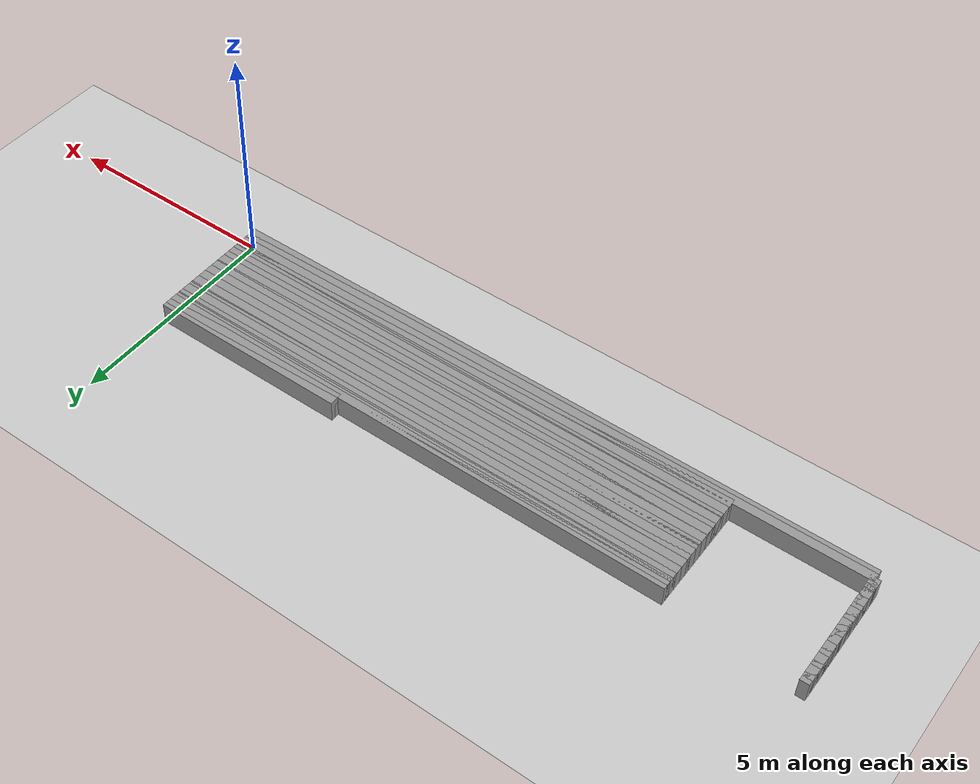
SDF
<sdf version="1.6">
 <world name="GridMap">
  <include><uri>model://sun</uri></include>
  <include><uri>model://ground_plane</uri></include>
  <model name="GridMap">
   <link name="Wall_(74.5,0.0)">
    <collision name="Wall_(74.5,0.0)_Collision">
     <geometry><box><size>14.9 0.2 0.5</size></box></geometry>
     <pose>-7.45 0.0 0.25 0 -0 0</pose>
    </collision>
    <inertial>
     <mass>0.5</mass>
     <pose>0 0.01 0 0 0 0</pose>
     <inertia><ixx>0.004</ixx><ixy>0.001</ixy><ixz>0</ixz><iyy>0.006</iyy><iyz>0</iyz><izz>0.007</izz></inertia>
    </inertial>
    <visual name="Wall_(74.5,0.0)_Visual">
     <geometry><box><size>14.9 0.2 0.5</size></box></geometry>
     <pose>-7.45 0.0 0.25 0 -0 0</pose>
     <material>
      <script><uri>file://media/materials/scripts/gazebo.material</uri><name>Gazebo/Grey</name></script>
      <ambient>1 1 1 1</ambient>
     </material>
     <meta><layer>0</layer></meta>
    </visual>
   </link>
   <link name="Wall_(74.5,1.0)">
    <collision name="Wall_(74.5,1.0)_Collision">
     <geometry><box><size>14.9 0.2 0.5</size></box></geometry>
     <pose>-7.45 0.1 0.25 0 -0 0</pose>
    </collision>
    <inertial>
     <mass>0.5</mass>
     <pose>0 0.01 0 0 0 0</pose>
     <inertia><ixx>0.004</ixx><ixy>0.001</ixy><ixz>0</ixz><iyy>0.006</iyy><iyz>0</iyz><izz>0.007</izz></inertia>
    </inertial>
    <visual name="Wall_(74.5,1.0)_Visual">
     <geometry><box><size>14.9 0.2 0.5</size></box></geometry>
     <pose>-7.45 0.1 0.25 0 -0 0</pose>
     <material>
      <script><uri>file://media/materials/scripts/gazebo.material</uri><name>Gazebo/Grey</name></script>
      <ambient>1 1 1 1</ambient>
     </material>
     <meta><layer>0</layer></meta>
    </visual>
   </link>
   <link name="Wall_(60.0,2.0)">
    <collision name="Wall_(60.0,2.0)_Collision">
     <geometry><box><size>12.0 0.2 0.5</size></box></geometry>
     <pose>-6.0 0.2 0.25 0 -0 0</pose>
    </collision>
    <inertial>
     <mass>0.5</mass>
     <pose>0 0.01 0 0 0 0</pose>
     <inertia><ixx>0.004</ixx><ixy>0.001</ixy><ixz>0</ixz><iyy>0.006</iyy><iyz>0</iyz><izz>0.007</izz></inertia>
    </inertial>
    <visual name="Wall_(60.0,2.0)_Visual">
     <geometry><box><size>12.0 0.2 0.5</size></box></geometry>
     <pose>-6.0 0.2 0.25 0 -0 0</pose>
     <material>
      <script><uri>file://media/materials/scripts/gazebo.material</uri><name>Gazebo/Grey</name></script>
      <ambient>1 1 1 1</ambient>
     </material>
     <meta><layer>0</layer></meta>
    </visual>
   </link>
   <link name="Wall_(149.0,2.0)">
    <collision name="Wall_(149.0,2.0)_Collision">
     <geometry><box><size>0.2 0.2 0.5</size></box></geometry>
     <pose>-14.9 0.2 0.25 0 -0 0</pose>
    </collision>
    <inertial>
     <mass>0.5</mass>
     <pose>0 0.01 0 0 0 0</pose>
     <inertia><ixx>0.004</ixx><ixy>0.001</ixy><ixz>0</ixz><iyy>0.006</iyy><iyz>0</iyz><izz>0.007</izz></inertia>
    </inertial>
    <visual name="Wall_(149.0,2.0)_Visual">
     <geometry><box><size>0.2 0.2 0.5</size></box></geometry>
     <pose>-14.9 0.2 0.25 0 -0 0</pose>
     <material>
      <script><uri>file://media/materials/scripts/gazebo.material</uri><name>Gazebo/Grey</name></script>
      <ambient>1 1 1 1</ambient>
     </material>
     <meta><layer>0</layer></meta>
    </visual>
   </link>
   <link name="Wall_(60.0,3.0)">
    <collision name="Wall_(60.0,3.0)_Collision">
     <geometry><box><size>12.0 0.2 0.5</size></box></geometry>
     <pose>-6.0 0.30000000000000004 0.25 0 -0 0</pose>
    </collision>
    <inertial>
     <mass>0.5</mass>
     <pose>0 0.01 0 0 0 0</pose>
     <inertia><ixx>0.004</ixx><ixy>0.001</ixy><ixz>0</ixz><iyy>0.006</iyy><iyz>0</iyz><izz>0.007</izz></inertia>
    </inertial>
    <visual name="Wall_(60.0,3.0)_Visual">
     <geometry><box><size>12.0 0.2 0.5</size></box></geometry>
     <pose>-6.0 0.30000000000000004 0.25 0 -0 0</pose>
     <material>
      <script><uri>file://media/materials/scripts/gazebo.material</uri><name>Gazebo/Grey</name></script>
      <ambient>1 1 1 1</ambient>
     </material>
     <meta><layer>0</layer></meta>
    </visual>
   </link>
   <link name="Wall_(149.0,3.0)">
    <collision name="Wall_(149.0,3.0)_Collision">
     <geometry><box><size>0.2 0.2 0.5</size></box></geometry>
     <pose>-14.9 0.30000000000000004 0.25 0 -0 0</pose>
    </collision>
    <inertial>
     <mass>0.5</mass>
     <pose>0 0.01 0 0 0 0</pose>
     <inertia><ixx>0.004</ixx><ixy>0.001</ixy><ixz>0</ixz><iyy>0.006</iyy><iyz>0</iyz><izz>0.007</izz></inertia>
    </inertial>
    <visual name="Wall_(149.0,3.0)_Visual">
     <geometry><box><size>0.2 0.2 0.5</size></box></geometry>
     <pose>-14.9 0.30000000000000004 0.25 0 -0 0</pose>
     <material>
      <script><uri>file://media/materials/scripts/gazebo.material</uri><name>Gazebo/Grey</name></script>
      <ambient>1 1 1 1</ambient>
     </material>
     <meta><layer>0</layer></meta>
    </visual>
   </link>
   <link name="Wall_(60.0,4.0)">
    <collision name="Wall_(60.0,4.0)_Collision">
     <geometry><box><size>12.0 0.2 0.5</size></box></geometry>
     <pose>-6.0 0.4 0.25 0 -0 0</pose>
    </collision>
    <inertial>
     <mass>0.5</mass>
     <pose>0 0.01 0 0 0 0</pose>
     <inertia><ixx>0.004</ixx><ixy>0.001</ixy><ixz>0</ixz><iyy>0.006</iyy><iyz>0</iyz><izz>0.007</izz></inertia>
    </inertial>
    <visual name="Wall_(60.0,4.0)_Visual">
     <geometry><box><size>12.0 0.2 0.5</size></box></geometry>
     <pose>-6.0 0.4 0.25 0 -0 0</pose>
     <material>
      <script><uri>file://media/materials/scripts/gazebo.material</uri><name>Gazebo/Grey</name></script>
      <ambient>1 1 1 1</ambient>
     </material>
     <meta><layer>0</layer></meta>
    </visual>
   </link>
   <link name="Wall_(149.0,4.0)">
    <collision name="Wall_(149.0,4.0)_Collision">
     <geometry><box><size>0.2 0.2 0.5</size></box></geometry>
     <pose>-14.9 0.4 0.25 0 -0 0</pose>
    </collision>
    <inertial>
     <mass>0.5</mass>
     <pose>0 0.01 0 0 0 0</pose>
     <inertia><ixx>0.004</ixx><ixy>0.001</ixy><ixz>0</ixz><iyy>0.006</iyy><iyz>0</iyz><izz>0.007</izz></inertia>
    </inertial>
    <visual name="Wall_(149.0,4.0)_Visual">
     <geometry><box><size>0.2 0.2 0.5</size></box></geometry>
     <pose>-14.9 0.4 0.25 0 -0 0</pose>
     <material>
      <script><uri>file://media/materials/scripts/gazebo.material</uri><name>Gazebo/Grey</name></script>
      <ambient>1 1 1 1</ambient>
     </material>
     <meta><layer>0</layer></meta>
    </visual>
   </link>
   <link name="Wall_(60.0,5.0)">
    <collision name="Wall_(60.0,5.0)_Collision">
     <geometry><box><size>12.0 0.2 0.5</size></box></geometry>
     <pose>-6.0 0.5 0.25 0 -0 0</pose>
    </collision>
    <inertial>
     <mass>0.5</mass>
     <pose>0 0.01 0 0 0 0</pose>
     <inertia><ixx>0.004</ixx><ixy>0.001</ixy><ixz>0</ixz><iyy>0.006</iyy><iyz>0</iyz><izz>0.007</izz></inertia>
    </inertial>
    <visual name="Wall_(60.0,5.0)_Visual">
     <geometry><box><size>12.0 0.2 0.5</size></box></geometry>
     <pose>-6.0 0.5 0.25 0 -0 0</pose>
     <material>
      <script><uri>file://media/materials/scripts/gazebo.material</uri><name>Gazebo/Grey</name></script>
      <ambient>1 1 1 1</ambient>
     </material>
     <meta><layer>0</layer></meta>
    </visual>
   </link>
   <link name="Wall_(149.0,5.0)">
    <collision name="Wall_(149.0,5.0)_Collision">
     <geometry><box><size>0.2 0.2 0.5</size></box></geometry>
     <pose>-14.9 0.5 0.25 0 -0 0</pose>
    </collision>
    <inertial>
     <mass>0.5</mass>
     <pose>0 0.01 0 0 0 0</pose>
     <inertia><ixx>0.004</ixx><ixy>0.001</ixy><ixz>0</ixz><iyy>0.006</iyy><iyz>0</iyz><izz>0.007</izz></inertia>
    </inertial>
    <visual name="Wall_(149.0,5.0)_Visual">
     <geometry><box><size>0.2 0.2 0.5</size></box></geometry>
     <pose>-14.9 0.5 0.25 0 -0 0</pose>
     <material>
      <script><uri>file://media/materials/scripts/gazebo.material</uri><name>Gazebo/Grey</name></script>
      <ambient>1 1 1 1</ambient>
     </material>
     <meta><layer>0</layer></meta>
    </visual>
   </link>
   <link name="Wall_(60.0,6.0)">
    <collision name="Wall_(60.0,6.0)_Collision">
     <geometry><box><size>12.0 0.2 0.5</size></box></geometry>
     <pose>-6.0 0.6000000000000001 0.25 0 -0 0</pose>
    </collision>
    <inertial>
     <mass>0.5</mass>
     <pose>0 0.01 0 0 0 0</pose>
     <inertia><ixx>0.004</ixx><ixy>0.001</ixy><ixz>0</ixz><iyy>0.006</iyy><iyz>0</iyz><izz>0.007</izz></inertia>
    </inertial>
    <visual name="Wall_(60.0,6.0)_Visual">
     <geometry><box><size>12.0 0.2 0.5</size></box></geometry>
     <pose>-6.0 0.6000000000000001 0.25 0 -0 0</pose>
     <material>
      <script><uri>file://media/materials/scripts/gazebo.material</uri><name>Gazebo/Grey</name></script>
      <ambient>1 1 1 1</ambient>
     </material>
     <meta><layer>0</layer></meta>
    </visual>
   </link>
   <link name="Wall_(149.0,6.0)">
    <collision name="Wall_(149.0,6.0)_Collision">
     <geometry><box><size>0.2 0.2 0.5</size></box></geometry>
     <pose>-14.9 0.6000000000000001 0.25 0 -0 0</pose>
    </collision>
    <inertial>
     <mass>0.5</mass>
     <pose>0 0.01 0 0 0 0</pose>
     <inertia><ixx>0.004</ixx><ixy>0.001</ixy><ixz>0</ixz><iyy>0.006</iyy><iyz>0</iyz><izz>0.007</izz></inertia>
    </inertial>
    <visual name="Wall_(149.0,6.0)_Visual">
     <geometry><box><size>0.2 0.2 0.5</size></box></geometry>
     <pose>-14.9 0.6000000000000001 0.25 0 -0 0</pose>
     <material>
      <script><uri>file://media/materials/scripts/gazebo.material</uri><name>Gazebo/Grey</name></script>
      <ambient>1 1 1 1</ambient>
     </material>
     <meta><layer>0</layer></meta>
    </visual>
   </link>
   <link name="Wall_(60.0,7.0)">
    <collision name="Wall_(60.0,7.0)_Collision">
     <geometry><box><size>12.0 0.2 0.5</size></box></geometry>
     <pose>-6.0 0.7000000000000001 0.25 0 -0 0</pose>
    </collision>
    <inertial>
     <mass>0.5</mass>
     <pose>0 0.01 0 0 0 0</pose>
     <inertia><ixx>0.004</ixx><ixy>0.001</ixy><ixz>0</ixz><iyy>0.006</iyy><iyz>0</iyz><izz>0.007</izz></inertia>
    </inertial>
    <visual name="Wall_(60.0,7.0)_Visual">
     <geometry><box><size>12.0 0.2 0.5</size></box></geometry>
     <pose>-6.0 0.7000000000000001 0.25 0 -0 0</pose>
     <material>
      <script><uri>file://media/materials/scripts/gazebo.material</uri><name>Gazebo/Grey</name></script>
      <ambient>1 1 1 1</ambient>
     </material>
     <meta><layer>0</layer></meta>
    </visual>
   </link>
   <link name="Wall_(149.0,7.0)">
    <collision name="Wall_(149.0,7.0)_Collision">
     <geometry><box><size>0.2 0.2 0.5</size></box></geometry>
     <pose>-14.9 0.7000000000000001 0.25 0 -0 0</pose>
    </collision>
    <inertial>
     <mass>0.5</mass>
     <pose>0 0.01 0 0 0 0</pose>
     <inertia><ixx>0.004</ixx><ixy>0.001</ixy><ixz>0</ixz><iyy>0.006</iyy><iyz>0</iyz><izz>0.007</izz></inertia>
    </inertial>
    <visual name="Wall_(149.0,7.0)_Visual">
     <geometry><box><size>0.2 0.2 0.5</size></box></geometry>
     <pose>-14.9 0.7000000000000001 0.25 0 -0 0</pose>
     <material>
      <script><uri>file://media/materials/scripts/gazebo.material</uri><name>Gazebo/Grey</name></script>
      <ambient>1 1 1 1</ambient>
     </material>
     <meta><layer>0</layer></meta>
    </visual>
   </link>
   <link name="Wall_(60.0,8.0)">
    <collision name="Wall_(60.0,8.0)_Collision">
     <geometry><box><size>12.0 0.2 0.5</size></box></geometry>
     <pose>-6.0 0.8 0.25 0 -0 0</pose>
    </collision>
    <inertial>
     <mass>0.5</mass>
     <pose>0 0.01 0 0 0 0</pose>
     <inertia><ixx>0.004</ixx><ixy>0.001</ixy><ixz>0</ixz><iyy>0.006</iyy><iyz>0</iyz><izz>0.007</izz></inertia>
    </inertial>
    <visual name="Wall_(60.0,8.0)_Visual">
     <geometry><box><size>12.0 0.2 0.5</size></box></geometry>
     <pose>-6.0 0.8 0.25 0 -0 0</pose>
     <material>
      <script><uri>file://media/materials/scripts/gazebo.material</uri><name>Gazebo/Grey</name></script>
      <ambient>1 1 1 1</ambient>
     </material>
     <meta><layer>0</layer></meta>
    </visual>
   </link>
   <link name="Wall_(149.0,8.0)">
    <collision name="Wall_(149.0,8.0)_Collision">
     <geometry><box><size>0.2 0.2 0.5</size></box></geometry>
     <pose>-14.9 0.8 0.25 0 -0 0</pose>
    </collision>
    <inertial>
     <mass>0.5</mass>
     <pose>0 0.01 0 0 0 0</pose>
     <inertia><ixx>0.004</ixx><ixy>0.001</ixy><ixz>0</ixz><iyy>0.006</iyy><iyz>0</iyz><izz>0.007</izz></inertia>
    </inertial>
    <visual name="Wall_(149.0,8.0)_Visual">
     <geometry><box><size>0.2 0.2 0.5</size></box></geometry>
     <pose>-14.9 0.8 0.25 0 -0 0</pose>
     <material>
      <script><uri>file://media/materials/scripts/gazebo.material</uri><name>Gazebo/Grey</name></script>
      <ambient>1 1 1 1</ambient>
     </material>
     <meta><layer>0</layer></meta>
    </visual>
   </link>
   <link name="Wall_(60.0,9.0)">
    <collision name="Wall_(60.0,9.0)_Collision">
     <geometry><box><size>12.0 0.2 0.5</size></box></geometry>
     <pose>-6.0 0.9 0.25 0 -0 0</pose>
    </collision>
    <inertial>
     <mass>0.5</mass>
     <pose>0 0.01 0 0 0 0</pose>
     <inertia><ixx>0.004</ixx><ixy>0.001</ixy><ixz>0</ixz><iyy>0.006</iyy><iyz>0</iyz><izz>0.007</izz></inertia>
    </inertial>
    <visual name="Wall_(60.0,9.0)_Visual">
     <geometry><box><size>12.0 0.2 0.5</size></box></geometry>
     <pose>-6.0 0.9 0.25 0 -0 0</pose>
     <material>
      <script><uri>file://media/materials/scripts/gazebo.material</uri><name>Gazebo/Grey</name></script>
      <ambient>1 1 1 1</ambient>
     </material>
     <meta><layer>0</layer></meta>
    </visual>
   </link>
   <link name="Wall_(149.0,9.0)">
    <collision name="Wall_(149.0,9.0)_Collision">
     <geometry><box><size>0.2 0.2 0.5</size></box></geometry>
     <pose>-14.9 0.9 0.25 0 -0 0</pose>
    </collision>
    <inertial>
     <mass>0.5</mass>
     <pose>0 0.01 0 0 0 0</pose>
     <inertia><ixx>0.004</ixx><ixy>0.001</ixy><ixz>0</ixz><iyy>0.006</iyy><iyz>0</iyz><izz>0.007</izz></inertia>
    </inertial>
    <visual name="Wall_(149.0,9.0)_Visual">
     <geometry><box><size>0.2 0.2 0.5</size></box></geometry>
     <pose>-14.9 0.9 0.25 0 -0 0</pose>
     <material>
      <script><uri>file://media/materials/scripts/gazebo.material</uri><name>Gazebo/Grey</name></script>
      <ambient>1 1 1 1</ambient>
     </material>
     <meta><layer>0</layer></meta>
    </visual>
   </link>
   <link name="Wall_(60.0,10.0)">
    <collision name="Wall_(60.0,10.0)_Collision">
     <geometry><box><size>12.0 0.2 0.5</size></box></geometry>
     <pose>-6.0 1.0 0.25 0 -0 0</pose>
    </collision>
    <inertial>
     <mass>0.5</mass>
     <pose>0 0.01 0 0 0 0</pose>
     <inertia><ixx>0.004</ixx><ixy>0.001</ixy><ixz>0</ixz><iyy>0.006</iyy><iyz>0</iyz><izz>0.007</izz></inertia>
    </inertial>
    <visual name="Wall_(60.0,10.0)_Visual">
     <geometry><box><size>12.0 0.2 0.5</size></box></geometry>
     <pose>-6.0 1.0 0.25 0 -0 0</pose>
     <material>
      <script><uri>file://media/materials/scripts/gazebo.material</uri><name>Gazebo/Grey</name></script>
      <ambient>1 1 1 1</ambient>
     </material>
     <meta><layer>0</layer></meta>
    </visual>
   </link>
   <link name="Wall_(149.0,10.0)">
    <collision name="Wall_(149.0,10.0)_Collision">
     <geometry><box><size>0.2 0.2 0.5</size></box></geometry>
     <pose>-14.9 1.0 0.25 0 -0 0</pose>
    </collision>
    <inertial>
     <mass>0.5</mass>
     <pose>0 0.01 0 0 0 0</pose>
     <inertia><ixx>0.004</ixx><ixy>0.001</ixy><ixz>0</ixz><iyy>0.006</iyy><iyz>0</iyz><izz>0.007</izz></inertia>
    </inertial>
    <visual name="Wall_(149.0,10.0)_Visual">
     <geometry><box><size>0.2 0.2 0.5</size></box></geometry>
     <pose>-14.9 1.0 0.25 0 -0 0</pose>
     <material>
      <script><uri>file://media/materials/scripts/gazebo.material</uri><name>Gazebo/Grey</name></script>
      <ambient>1 1 1 1</ambient>
     </material>
     <meta><layer>0</layer></meta>
    </visual>
   </link>
   <link name="Wall_(60.0,11.0)">
    <collision name="Wall_(60.0,11.0)_Collision">
     <geometry><box><size>12.0 0.2 0.5</size></box></geometry>
     <pose>-6.0 1.1 0.25 0 -0 0</pose>
    </collision>
    <inertial>
     <mass>0.5</mass>
     <pose>0 0.01 0 0 0 0</pose>
     <inertia><ixx>0.004</ixx><ixy>0.001</ixy><ixz>0</ixz><iyy>0.006</iyy><iyz>0</iyz><izz>0.007</izz></inertia>
    </inertial>
    <visual name="Wall_(60.0,11.0)_Visual">
     <geometry><box><size>12.0 0.2 0.5</size></box></geometry>
     <pose>-6.0 1.1 0.25 0 -0 0</pose>
     <material>
      <script><uri>file://media/materials/scripts/gazebo.material</uri><name>Gazebo/Grey</name></script>
      <ambient>1 1 1 1</ambient>
     </material>
     <meta><layer>0</layer></meta>
    </visual>
   </link>
   <link name="Wall_(149.0,11.0)">
    <collision name="Wall_(149.0,11.0)_Collision">
     <geometry><box><size>0.2 0.2 0.5</size></box></geometry>
     <pose>-14.9 1.1 0.25 0 -0 0</pose>
    </collision>
    <inertial>
     <mass>0.5</mass>
     <pose>0 0.01 0 0 0 0</pose>
     <inertia><ixx>0.004</ixx><ixy>0.001</ixy><ixz>0</ixz><iyy>0.006</iyy><iyz>0</iyz><izz>0.007</izz></inertia>
    </inertial>
    <visual name="Wall_(149.0,11.0)_Visual">
     <geometry><box><size>0.2 0.2 0.5</size></box></geometry>
     <pose>-14.9 1.1 0.25 0 -0 0</pose>
     <material>
      <script><uri>file://media/materials/scripts/gazebo.material</uri><name>Gazebo/Grey</name></script>
      <ambient>1 1 1 1</ambient>
     </material>
     <meta><layer>0</layer></meta>
    </visual>
   </link>
   <link name="Wall_(60.0,12.0)">
    <collision name="Wall_(60.0,12.0)_Collision">
     <geometry><box><size>12.0 0.2 0.5</size></box></geometry>
     <pose>-6.0 1.2000000000000002 0.25 0 -0 0</pose>
    </collision>
    <inertial>
     <mass>0.5</mass>
     <pose>0 0.01 0 0 0 0</pose>
     <inertia><ixx>0.004</ixx><ixy>0.001</ixy><ixz>0</ixz><iyy>0.006</iyy><iyz>0</iyz><izz>0.007</izz></inertia>
    </inertial>
    <visual name="Wall_(60.0,12.0)_Visual">
     <geometry><box><size>12.0 0.2 0.5</size></box></geometry>
     <pose>-6.0 1.2000000000000002 0.25 0 -0 0</pose>
     <material>
      <script><uri>file://media/materials/scripts/gazebo.material</uri><name>Gazebo/Grey</name></script>
      <ambient>1 1 1 1</ambient>
     </material>
     <meta><layer>0</layer></meta>
    </visual>
   </link>
   <link name="Wall_(149.0,12.0)">
    <collision name="Wall_(149.0,12.0)_Collision">
     <geometry><box><size>0.2 0.2 0.5</size></box></geometry>
     <pose>-14.9 1.2000000000000002 0.25 0 -0 0</pose>
    </collision>
    <inertial>
     <mass>0.5</mass>
     <pose>0 0.01 0 0 0 0</pose>
     <inertia><ixx>0.004</ixx><ixy>0.001</ixy><ixz>0</ixz><iyy>0.006</iyy><iyz>0</iyz><izz>0.007</izz></inertia>
    </inertial>
    <visual name="Wall_(149.0,12.0)_Visual">
     <geometry><box><size>0.2 0.2 0.5</size></box></geometry>
     <pose>-14.9 1.2000000000000002 0.25 0 -0 0</pose>
     <material>
      <script><uri>file://media/materials/scripts/gazebo.material</uri><name>Gazebo/Grey</name></script>
      <ambient>1 1 1 1</ambient>
     </material>
     <meta><layer>0</layer></meta>
    </visual>
   </link>
   <link name="Wall_(60.0,13.0)">
    <collision name="Wall_(60.0,13.0)_Collision">
     <geometry><box><size>12.0 0.2 0.5</size></box></geometry>
     <pose>-6.0 1.3 0.25 0 -0 0</pose>
    </collision>
    <inertial>
     <mass>0.5</mass>
     <pose>0 0.01 0 0 0 0</pose>
     <inertia><ixx>0.004</ixx><ixy>0.001</ixy><ixz>0</ixz><iyy>0.006</iyy><iyz>0</iyz><izz>0.007</izz></inertia>
    </inertial>
    <visual name="Wall_(60.0,13.0)_Visual">
     <geometry><box><size>12.0 0.2 0.5</size></box></geometry>
     <pose>-6.0 1.3 0.25 0 -0 0</pose>
     <material>
      <script><uri>file://media/materials/scripts/gazebo.material</uri><name>Gazebo/Grey</name></script>
      <ambient>1 1 1 1</ambient>
     </material>
     <meta><layer>0</layer></meta>
    </visual>
   </link>
   <link name="Wall_(149.0,13.0)">
    <collision name="Wall_(149.0,13.0)_Collision">
     <geometry><box><size>0.2 0.2 0.5</size></box></geometry>
     <pose>-14.9 1.3 0.25 0 -0 0</pose>
    </collision>
    <inertial>
     <mass>0.5</mass>
     <pose>0 0.01 0 0 0 0</pose>
     <inertia><ixx>0.004</ixx><ixy>0.001</ixy><ixz>0</ixz><iyy>0.006</iyy><iyz>0</iyz><izz>0.007</izz></inertia>
    </inertial>
    <visual name="Wall_(149.0,13.0)_Visual">
     <geometry><box><size>0.2 0.2 0.5</size></box></geometry>
     <pose>-14.9 1.3 0.25 0 -0 0</pose>
     <material>
      <script><uri>file://media/materials/scripts/gazebo.material</uri><name>Gazebo/Grey</name></script>
      <ambient>1 1 1 1</ambient>
     </material>
     <meta><layer>0</layer></meta>
    </visual>
   </link>
   <link name="Wall_(60.0,14.0)">
    <collision name="Wall_(60.0,14.0)_Collision">
     <geometry><box><size>12.0 0.2 0.5</size></box></geometry>
     <pose>-6.0 1.4000000000000001 0.25 0 -0 0</pose>
    </collision>
    <inertial>
     <mass>0.5</mass>
     <pose>0 0.01 0 0 0 0</pose>
     <inertia><ixx>0.004</ixx><ixy>0.001</ixy><ixz>0</ixz><iyy>0.006</iyy><iyz>0</iyz><izz>0.007</izz></inertia>
    </inertial>
    <visual name="Wall_(60.0,14.0)_Visual">
     <geometry><box><size>12.0 0.2 0.5</size></box></geometry>
     <pose>-6.0 1.4000000000000001 0.25 0 -0 0</pose>
     <material>
      <script><uri>file://media/materials/scripts/gazebo.material</uri><name>Gazebo/Grey</name></script>
      <ambient>1 1 1 1</ambient>
     </material>
     <meta><layer>0</layer></meta>
    </visual>
   </link>
   <link name="Wall_(149.0,14.0)">
    <collision name="Wall_(149.0,14.0)_Collision">
     <geometry><box><size>0.2 0.2 0.5</size></box></geometry>
     <pose>-14.9 1.4000000000000001 0.25 0 -0 0</pose>
    </collision>
    <inertial>
     <mass>0.5</mass>
     <pose>0 0.01 0 0 0 0</pose>
     <inertia><ixx>0.004</ixx><ixy>0.001</ixy><ixz>0</ixz><iyy>0.006</iyy><iyz>0</iyz><izz>0.007</izz></inertia>
    </inertial>
    <visual name="Wall_(149.0,14.0)_Visual">
     <geometry><box><size>0.2 0.2 0.5</size></box></geometry>
     <pose>-14.9 1.4000000000000001 0.25 0 -0 0</pose>
     <material>
      <script><uri>file://media/materials/scripts/gazebo.material</uri><name>Gazebo/Grey</name></script>
      <ambient>1 1 1 1</ambient>
     </material>
     <meta><layer>0</layer></meta>
    </visual>
   </link>
   <link name="Wall_(60.0,15.0)">
    <collision name="Wall_(60.0,15.0)_Collision">
     <geometry><box><size>12.0 0.2 0.5</size></box></geometry>
     <pose>-6.0 1.5 0.25 0 -0 0</pose>
    </collision>
    <inertial>
     <mass>0.5</mass>
     <pose>0 0.01 0 0 0 0</pose>
     <inertia><ixx>0.004</ixx><ixy>0.001</ixy><ixz>0</ixz><iyy>0.006</iyy><iyz>0</iyz><izz>0.007</izz></inertia>
    </inertial>
    <visual name="Wall_(60.0,15.0)_Visual">
     <geometry><box><size>12.0 0.2 0.5</size></box></geometry>
     <pose>-6.0 1.5 0.25 0 -0 0</pose>
     <material>
      <script><uri>file://media/materials/scripts/gazebo.material</uri><name>Gazebo/Grey</name></script>
      <ambient>1 1 1 1</ambient>
     </material>
     <meta><layer>0</layer></meta>
    </visual>
   </link>
   <link name="Wall_(149.0,15.0)">
    <collision name="Wall_(149.0,15.0)_Collision">
     <geometry><box><size>0.2 0.2 0.5</size></box></geometry>
     <pose>-14.9 1.5 0.25 0 -0 0</pose>
    </collision>
    <inertial>
     <mass>0.5</mass>
     <pose>0 0.01 0 0 0 0</pose>
     <inertia><ixx>0.004</ixx><ixy>0.001</ixy><ixz>0</ixz><iyy>0.006</iyy><iyz>0</iyz><izz>0.007</izz></inertia>
    </inertial>
    <visual name="Wall_(149.0,15.0)_Visual">
     <geometry><box><size>0.2 0.2 0.5</size></box></geometry>
     <pose>-14.9 1.5 0.25 0 -0 0</pose>
     <material>
      <script><uri>file://media/materials/scripts/gazebo.material</uri><name>Gazebo/Grey</name></script>
      <ambient>1 1 1 1</ambient>
     </material>
     <meta><layer>0</layer></meta>
    </visual>
   </link>
   <link name="Wall_(60.0,16.0)">
    <collision name="Wall_(60.0,16.0)_Collision">
     <geometry><box><size>12.0 0.2 0.5</size></box></geometry>
     <pose>-6.0 1.6 0.25 0 -0 0</pose>
    </collision>
    <inertial>
     <mass>0.5</mass>
     <pose>0 0.01 0 0 0 0</pose>
     <inertia><ixx>0.004</ixx><ixy>0.001</ixy><ixz>0</ixz><iyy>0.006</iyy><iyz>0</iyz><izz>0.007</izz></inertia>
    </inertial>
    <visual name="Wall_(60.0,16.0)_Visual">
     <geometry><box><size>12.0 0.2 0.5</size></box></geometry>
     <pose>-6.0 1.6 0.25 0 -0 0</pose>
     <material>
      <script><uri>file://media/materials/scripts/gazebo.material</uri><name>Gazebo/Grey</name></script>
      <ambient>1 1 1 1</ambient>
     </material>
     <meta><layer>0</layer></meta>
    </visual>
   </link>
   <link name="Wall_(149.0,16.0)">
    <collision name="Wall_(149.0,16.0)_Collision">
     <geometry><box><size>0.2 0.2 0.5</size></box></geometry>
     <pose>-14.9 1.6 0.25 0 -0 0</pose>
    </collision>
    <inertial>
     <mass>0.5</mass>
     <pose>0 0.01 0 0 0 0</pose>
     <inertia><ixx>0.004</ixx><ixy>0.001</ixy><ixz>0</ixz><iyy>0.006</iyy><iyz>0</iyz><izz>0.007</izz></inertia>
    </inertial>
    <visual name="Wall_(149.0,16.0)_Visual">
     <geometry><box><size>0.2 0.2 0.5</size></box></geometry>
     <pose>-14.9 1.6 0.25 0 -0 0</pose>
     <material>
      <script><uri>file://media/materials/scripts/gazebo.material</uri><name>Gazebo/Grey</name></script>
      <ambient>1 1 1 1</ambient>
     </material>
     <meta><layer>0</layer></meta>
    </visual>
   </link>
   <link name="Wall_(60.0,17.0)">
    <collision name="Wall_(60.0,17.0)_Collision">
     <geometry><box><size>12.0 0.2 0.5</size></box></geometry>
     <pose>-6.0 1.7000000000000002 0.25 0 -0 0</pose>
    </collision>
    <inertial>
     <mass>0.5</mass>
     <pose>0 0.01 0 0 0 0</pose>
     <inertia><ixx>0.004</ixx><ixy>0.001</ixy><ixz>0</ixz><iyy>0.006</iyy><iyz>0</iyz><izz>0.007</izz></inertia>
    </inertial>
    <visual name="Wall_(60.0,17.0)_Visual">
     <geometry><box><size>12.0 0.2 0.5</size></box></geometry>
     <pose>-6.0 1.7000000000000002 0.25 0 -0 0</pose>
     <material>
      <script><uri>file://media/materials/scripts/gazebo.material</uri><name>Gazebo/Grey</name></script>
      <ambient>1 1 1 1</ambient>
     </material>
     <meta><layer>0</layer></meta>
    </visual>
   </link>
   <link name="Wall_(149.0,17.0)">
    <collision name="Wall_(149.0,17.0)_Collision">
     <geometry><box><size>0.2 0.2 0.5</size></box></geometry>
     <pose>-14.9 1.7000000000000002 0.25 0 -0 0</pose>
    </collision>
    <inertial>
     <mass>0.5</mass>
     <pose>0 0.01 0 0 0 0</pose>
     <inertia><ixx>0.004</ixx><ixy>0.001</ixy><ixz>0</ixz><iyy>0.006</iyy><iyz>0</iyz><izz>0.007</izz></inertia>
    </inertial>
    <visual name="Wall_(149.0,17.0)_Visual">
     <geometry><box><size>0.2 0.2 0.5</size></box></geometry>
     <pose>-14.9 1.7000000000000002 0.25 0 -0 0</pose>
     <material>
      <script><uri>file://media/materials/scripts/gazebo.material</uri><name>Gazebo/Grey</name></script>
      <ambient>1 1 1 1</ambient>
     </material>
     <meta><layer>0</layer></meta>
    </visual>
   </link>
   <link name="Wall_(60.0,18.0)">
    <collision name="Wall_(60.0,18.0)_Collision">
     <geometry><box><size>12.0 0.2 0.5</size></box></geometry>
     <pose>-6.0 1.8 0.25 0 -0 0</pose>
    </collision>
    <inertial>
     <mass>0.5</mass>
     <pose>0 0.01 0 0 0 0</pose>
     <inertia><ixx>0.004</ixx><ixy>0.001</ixy><ixz>0</ixz><iyy>0.006</iyy><iyz>0</iyz><izz>0.007</izz></inertia>
    </inertial>
    <visual name="Wall_(60.0,18.0)_Visual">
     <geometry><box><size>12.0 0.2 0.5</size></box></geometry>
     <pose>-6.0 1.8 0.25 0 -0 0</pose>
     <material>
      <script><uri>file://media/materials/scripts/gazebo.material</uri><name>Gazebo/Grey</name></script>
      <ambient>1 1 1 1</ambient>
     </material>
     <meta><layer>0</layer></meta>
    </visual>
   </link>
   <link name="Wall_(149.0,18.0)">
    <collision name="Wall_(149.0,18.0)_Collision">
     <geometry><box><size>0.2 0.2 0.5</size></box></geometry>
     <pose>-14.9 1.8 0.25 0 -0 0</pose>
    </collision>
    <inertial>
     <mass>0.5</mass>
     <pose>0 0.01 0 0 0 0</pose>
     <inertia><ixx>0.004</ixx><ixy>0.001</ixy><ixz>0</ixz><iyy>0.006</iyy><iyz>0</iyz><izz>0.007</izz></inertia>
    </inertial>
    <visual name="Wall_(149.0,18.0)_Visual">
     <geometry><box><size>0.2 0.2 0.5</size></box></geometry>
     <pose>-14.9 1.8 0.25 0 -0 0</pose>
     <material>
      <script><uri>file://media/materials/scripts/gazebo.material</uri><name>Gazebo/Grey</name></script>
      <ambient>1 1 1 1</ambient>
     </material>
     <meta><layer>0</layer></meta>
    </visual>
   </link>
   <link name="Wall_(60.0,19.0)">
    <collision name="Wall_(60.0,19.0)_Collision">
     <geometry><box><size>12.0 0.2 0.5</size></box></geometry>
     <pose>-6.0 1.9000000000000001 0.25 0 -0 0</pose>
    </collision>
    <inertial>
     <mass>0.5</mass>
     <pose>0 0.01 0 0 0 0</pose>
     <inertia><ixx>0.004</ixx><ixy>0.001</ixy><ixz>0</ixz><iyy>0.006</iyy><iyz>0</iyz><izz>0.007</izz></inertia>
    </inertial>
    <visual name="Wall_(60.0,19.0)_Visual">
     <geometry><box><size>12.0 0.2 0.5</size></box></geometry>
     <pose>-6.0 1.9000000000000001 0.25 0 -0 0</pose>
     <material>
      <script><uri>file://media/materials/scripts/gazebo.material</uri><name>Gazebo/Grey</name></script>
      <ambient>1 1 1 1</ambient>
     </material>
     <meta><layer>0</layer></meta>
    </visual>
   </link>
   <link name="Wall_(149.0,19.0)">
    <collision name="Wall_(149.0,19.0)_Collision">
     <geometry><box><size>0.2 0.2 0.5</size></box></geometry>
     <pose>-14.9 1.9000000000000001 0.25 0 -0 0</pose>
    </collision>
    <inertial>
     <mass>0.5</mass>
     <pose>0 0.01 0 0 0 0</pose>
     <inertia><ixx>0.004</ixx><ixy>0.001</ixy><ixz>0</ixz><iyy>0.006</iyy><iyz>0</iyz><izz>0.007</izz></inertia>
    </inertial>
    <visual name="Wall_(149.0,19.0)_Visual">
     <geometry><box><size>0.2 0.2 0.5</size></box></geometry>
     <pose>-14.9 1.9000000000000001 0.25 0 -0 0</pose>
     <material>
      <script><uri>file://media/materials/scripts/gazebo.material</uri><name>Gazebo/Grey</name></script>
      <ambient>1 1 1 1</ambient>
     </material>
     <meta><layer>0</layer></meta>
    </visual>
   </link>
   <link name="Wall_(60.0,20.0)">
    <collision name="Wall_(60.0,20.0)_Collision">
     <geometry><box><size>12.0 0.2 0.5</size></box></geometry>
     <pose>-6.0 2.0 0.25 0 -0 0</pose>
    </collision>
    <inertial>
     <mass>0.5</mass>
     <pose>0 0.01 0 0 0 0</pose>
     <inertia><ixx>0.004</ixx><ixy>0.001</ixy><ixz>0</ixz><iyy>0.006</iyy><iyz>0</iyz><izz>0.007</izz></inertia>
    </inertial>
    <visual name="Wall_(60.0,20.0)_Visual">
     <geometry><box><size>12.0 0.2 0.5</size></box></geometry>
     <pose>-6.0 2.0 0.25 0 -0 0</pose>
     <material>
      <script><uri>file://media/materials/scripts/gazebo.material</uri><name>Gazebo/Grey</name></script>
      <ambient>1 1 1 1</ambient>
     </material>
     <meta><layer>0</layer></meta>
    </visual>
   </link>
   <link name="Wall_(149.0,20.0)">
    <collision name="Wall_(149.0,20.0)_Collision">
     <geometry><box><size>0.2 0.2 0.5</size></box></geometry>
     <pose>-14.9 2.0 0.25 0 -0 0</pose>
    </collision>
    <inertial>
     <mass>0.5</mass>
     <pose>0 0.01 0 0 0 0</pose>
     <inertia><ixx>0.004</ixx><ixy>0.001</ixy><ixz>0</ixz><iyy>0.006</iyy><iyz>0</iyz><izz>0.007</izz></inertia>
    </inertial>
    <visual name="Wall_(149.0,20.0)_Visual">
     <geometry><box><size>0.2 0.2 0.5</size></box></geometry>
     <pose>-14.9 2.0 0.25 0 -0 0</pose>
     <material>
      <script><uri>file://media/materials/scripts/gazebo.material</uri><name>Gazebo/Grey</name></script>
      <ambient>1 1 1 1</ambient>
     </material>
     <meta><layer>0</layer></meta>
    </visual>
   </link>
   <link name="Wall_(60.0,21.0)">
    <collision name="Wall_(60.0,21.0)_Collision">
     <geometry><box><size>12.0 0.2 0.5</size></box></geometry>
     <pose>-6.0 2.1 0.25 0 -0 0</pose>
    </collision>
    <inertial>
     <mass>0.5</mass>
     <pose>0 0.01 0 0 0 0</pose>
     <inertia><ixx>0.004</ixx><ixy>0.001</ixy><ixz>0</ixz><iyy>0.006</iyy><iyz>0</iyz><izz>0.007</izz></inertia>
    </inertial>
    <visual name="Wall_(60.0,21.0)_Visual">
     <geometry><box><size>12.0 0.2 0.5</size></box></geometry>
     <pose>-6.0 2.1 0.25 0 -0 0</pose>
     <material>
      <script><uri>file://media/materials/scripts/gazebo.material</uri><name>Gazebo/Grey</name></script>
      <ambient>1 1 1 1</ambient>
     </material>
     <meta><layer>0</layer></meta>
    </visual>
   </link>
   <link name="Wall_(149.0,21.0)">
    <collision name="Wall_(149.0,21.0)_Collision">
     <geometry><box><size>0.2 0.2 0.5</size></box></geometry>
     <pose>-14.9 2.1 0.25 0 -0 0</pose>
    </collision>
    <inertial>
     <mass>0.5</mass>
     <pose>0 0.01 0 0 0 0</pose>
     <inertia><ixx>0.004</ixx><ixy>0.001</ixy><ixz>0</ixz><iyy>0.006</iyy><iyz>0</iyz><izz>0.007</izz></inertia>
    </inertial>
    <visual name="Wall_(149.0,21.0)_Visual">
     <geometry><box><size>0.2 0.2 0.5</size></box></geometry>
     <pose>-14.9 2.1 0.25 0 -0 0</pose>
     <material>
      <script><uri>file://media/materials/scripts/gazebo.material</uri><name>Gazebo/Grey</name></script>
      <ambient>1 1 1 1</ambient>
     </material>
     <meta><layer>0</layer></meta>
    </visual>
   </link>
   <link name="Wall_(60.0,22.0)">
    <collision name="Wall_(60.0,22.0)_Collision">
     <geometry><box><size>12.0 0.2 0.5</size></box></geometry>
     <pose>-6.0 2.2 0.25 0 -0 0</pose>
    </collision>
    <inertial>
     <mass>0.5</mass>
     <pose>0 0.01 0 0 0 0</pose>
     <inertia><ixx>0.004</ixx><ixy>0.001</ixy><ixz>0</ixz><iyy>0.006</iyy><iyz>0</iyz><izz>0.007</izz></inertia>
    </inertial>
    <visual name="Wall_(60.0,22.0)_Visual">
     <geometry><box><size>12.0 0.2 0.5</size></box></geometry>
     <pose>-6.0 2.2 0.25 0 -0 0</pose>
     <material>
      <script><uri>file://media/materials/scripts/gazebo.material</uri><name>Gazebo/Grey</name></script>
      <ambient>1 1 1 1</ambient>
     </material>
     <meta><layer>0</layer></meta>
    </visual>
   </link>
   <link name="Wall_(149.0,22.0)">
    <collision name="Wall_(149.0,22.0)_Collision">
     <geometry><box><size>0.2 0.2 0.5</size></box></geometry>
     <pose>-14.9 2.2 0.25 0 -0 0</pose>
    </collision>
    <inertial>
     <mass>0.5</mass>
     <pose>0 0.01 0 0 0 0</pose>
     <inertia><ixx>0.004</ixx><ixy>0.001</ixy><ixz>0</ixz><iyy>0.006</iyy><iyz>0</iyz><izz>0.007</izz></inertia>
    </inertial>
    <visual name="Wall_(149.0,22.0)_Visual">
     <geometry><box><size>0.2 0.2 0.5</size></box></geometry>
     <pose>-14.9 2.2 0.25 0 -0 0</pose>
     <material>
      <script><uri>file://media/materials/scripts/gazebo.material</uri><name>Gazebo/Grey</name></script>
      <ambient>1 1 1 1</ambient>
     </material>
     <meta><layer>0</layer></meta>
    </visual>
   </link>
   <link name="Wall_(60.0,23.0)">
    <collision name="Wall_(60.0,23.0)_Collision">
     <geometry><box><size>12.0 0.2 0.5</size></box></geometry>
     <pose>-6.0 2.3000000000000003 0.25 0 -0 0</pose>
    </collision>
    <inertial>
     <mass>0.5</mass>
     <pose>0 0.01 0 0 0 0</pose>
     <inertia><ixx>0.004</ixx><ixy>0.001</ixy><ixz>0</ixz><iyy>0.006</iyy><iyz>0</iyz><izz>0.007</izz></inertia>
    </inertial>
    <visual name="Wall_(60.0,23.0)_Visual">
     <geometry><box><size>12.0 0.2 0.5</size></box></geometry>
     <pose>-6.0 2.3000000000000003 0.25 0 -0 0</pose>
     <material>
      <script><uri>file://media/materials/scripts/gazebo.material</uri><name>Gazebo/Grey</name></script>
      <ambient>1 1 1 1</ambient>
     </material>
     <meta><layer>0</layer></meta>
    </visual>
   </link>
   <link name="Wall_(149.0,23.0)">
    <collision name="Wall_(149.0,23.0)_Collision">
     <geometry><box><size>0.2 0.2 0.5</size></box></geometry>
     <pose>-14.9 2.3000000000000003 0.25 0 -0 0</pose>
    </collision>
    <inertial>
     <mass>0.5</mass>
     <pose>0 0.01 0 0 0 0</pose>
     <inertia><ixx>0.004</ixx><ixy>0.001</ixy><ixz>0</ixz><iyy>0.006</iyy><iyz>0</iyz><izz>0.007</izz></inertia>
    </inertial>
    <visual name="Wall_(149.0,23.0)_Visual">
     <geometry><box><size>0.2 0.2 0.5</size></box></geometry>
     <pose>-14.9 2.3000000000000003 0.25 0 -0 0</pose>
     <material>
      <script><uri>file://media/materials/scripts/gazebo.material</uri><name>Gazebo/Grey</name></script>
      <ambient>1 1 1 1</ambient>
     </material>
     <meta><layer>0</layer></meta>
    </visual>
   </link>
   <link name="Wall_(60.0,24.0)">
    <collision name="Wall_(60.0,24.0)_Collision">
     <geometry><box><size>12.0 0.2 0.5</size></box></geometry>
     <pose>-6.0 2.4000000000000004 0.25 0 -0 0</pose>
    </collision>
    <inertial>
     <mass>0.5</mass>
     <pose>0 0.01 0 0 0 0</pose>
     <inertia><ixx>0.004</ixx><ixy>0.001</ixy><ixz>0</ixz><iyy>0.006</iyy><iyz>0</iyz><izz>0.007</izz></inertia>
    </inertial>
    <visual name="Wall_(60.0,24.0)_Visual">
     <geometry><box><size>12.0 0.2 0.5</size></box></geometry>
     <pose>-6.0 2.4000000000000004 0.25 0 -0 0</pose>
     <material>
      <script><uri>file://media/materials/scripts/gazebo.material</uri><name>Gazebo/Grey</name></script>
      <ambient>1 1 1 1</ambient>
     </material>
     <meta><layer>0</layer></meta>
    </visual>
   </link>
   <link name="Wall_(149.0,24.0)">
    <collision name="Wall_(149.0,24.0)_Collision">
     <geometry><box><size>0.2 0.2 0.5</size></box></geometry>
     <pose>-14.9 2.4000000000000004 0.25 0 -0 0</pose>
    </collision>
    <inertial>
     <mass>0.5</mass>
     <pose>0 0.01 0 0 0 0</pose>
     <inertia><ixx>0.004</ixx><ixy>0.001</ixy><ixz>0</ixz><iyy>0.006</iyy><iyz>0</iyz><izz>0.007</izz></inertia>
    </inertial>
    <visual name="Wall_(149.0,24.0)_Visual">
     <geometry><box><size>0.2 0.2 0.5</size></box></geometry>
     <pose>-14.9 2.4000000000000004 0.25 0 -0 0</pose>
     <material>
      <script><uri>file://media/materials/scripts/gazebo.material</uri><name>Gazebo/Grey</name></script>
      <ambient>1 1 1 1</ambient>
     </material>
     <meta><layer>0</layer></meta>
    </visual>
   </link>
   <link name="Wall_(60.0,25.0)">
    <collision name="Wall_(60.0,25.0)_Collision">
     <geometry><box><size>12.0 0.2 0.5</size></box></geometry>
     <pose>-6.0 2.5 0.25 0 -0 0</pose>
    </collision>
    <inertial>
     <mass>0.5</mass>
     <pose>0 0.01 0 0 0 0</pose>
     <inertia><ixx>0.004</ixx><ixy>0.001</ixy><ixz>0</ixz><iyy>0.006</iyy><iyz>0</iyz><izz>0.007</izz></inertia>
    </inertial>
    <visual name="Wall_(60.0,25.0)_Visual">
     <geometry><box><size>12.0 0.2 0.5</size></box></geometry>
     <pose>-6.0 2.5 0.25 0 -0 0</pose>
     <material>
      <script><uri>file://media/materials/scripts/gazebo.material</uri><name>Gazebo/Grey</name></script>
      <ambient>1 1 1 1</ambient>
     </material>
     <meta><layer>0</layer></meta>
    </visual>
   </link>
   <link name="Wall_(149.0,25.0)">
    <collision name="Wall_(149.0,25.0)_Collision">
     <geometry><box><size>0.2 0.2 0.5</size></box></geometry>
     <pose>-14.9 2.5 0.25 0 -0 0</pose>
    </collision>
    <inertial>
     <mass>0.5</mass>
     <pose>0 0.01 0 0 0 0</pose>
     <inertia><ixx>0.004</ixx><ixy>0.001</ixy><ixz>0</ixz><iyy>0.006</iyy><iyz>0</iyz><izz>0.007</izz></inertia>
    </inertial>
    <visual name="Wall_(149.0,25.0)_Visual">
     <geometry><box><size>0.2 0.2 0.5</size></box></geometry>
     <pose>-14.9 2.5 0.25 0 -0 0</pose>
     <material>
      <script><uri>file://media/materials/scripts/gazebo.material</uri><name>Gazebo/Grey</name></script>
      <ambient>1 1 1 1</ambient>
     </material>
     <meta><layer>0</layer></meta>
    </visual>
   </link>
   <link name="Wall_(22.5,26.0)">
    <collision name="Wall_(22.5,26.0)_Collision">
     <geometry><box><size>4.5 0.2 0.5</size></box></geometry>
     <pose>-2.25 2.6 0.25 0 -0 0</pose>
    </collision>
    <inertial>
     <mass>0.5</mass>
     <pose>0 0.01 0 0 0 0</pose>
     <inertia><ixx>0.004</ixx><ixy>0.001</ixy><ixz>0</ixz><iyy>0.006</iyy><iyz>0</iyz><izz>0.007</izz></inertia>
    </inertial>
    <visual name="Wall_(22.5,26.0)_Visual">
     <geometry><box><size>4.5 0.2 0.5</size></box></geometry>
     <pose>-2.25 2.6 0.25 0 -0 0</pose>
     <material>
      <script><uri>file://media/materials/scripts/gazebo.material</uri><name>Gazebo/Grey</name></script>
      <ambient>1 1 1 1</ambient>
     </material>
     <meta><layer>0</layer></meta>
    </visual>
   </link>
   <link name="Wall_(149.0,26.0)">
    <collision name="Wall_(149.0,26.0)_Collision">
     <geometry><box><size>0.2 0.2 0.5</size></box></geometry>
     <pose>-14.9 2.6 0.25 0 -0 0</pose>
    </collision>
    <inertial>
     <mass>0.5</mass>
     <pose>0 0.01 0 0 0 0</pose>
     <inertia><ixx>0.004</ixx><ixy>0.001</ixy><ixz>0</ixz><iyy>0.006</iyy><iyz>0</iyz><izz>0.007</izz></inertia>
    </inertial>
    <visual name="Wall_(149.0,26.0)_Visual">
     <geometry><box><size>0.2 0.2 0.5</size></box></geometry>
     <pose>-14.9 2.6 0.25 0 -0 0</pose>
     <material>
      <script><uri>file://media/materials/scripts/gazebo.material</uri><name>Gazebo/Grey</name></script>
      <ambient>1 1 1 1</ambient>
     </material>
     <meta><layer>0</layer></meta>
    </visual>
   </link>
   <link name="Wall_(22.5,27.0)">
    <collision name="Wall_(22.5,27.0)_Collision">
     <geometry><box><size>4.5 0.2 0.5</size></box></geometry>
     <pose>-2.25 2.7 0.25 0 -0 0</pose>
    </collision>
    <inertial>
     <mass>0.5</mass>
     <pose>0 0.01 0 0 0 0</pose>
     <inertia><ixx>0.004</ixx><ixy>0.001</ixy><ixz>0</ixz><iyy>0.006</iyy><iyz>0</iyz><izz>0.007</izz></inertia>
    </inertial>
    <visual name="Wall_(22.5,27.0)_Visual">
     <geometry><box><size>4.5 0.2 0.5</size></box></geometry>
     <pose>-2.25 2.7 0.25 0 -0 0</pose>
     <material>
      <script><uri>file://media/materials/scripts/gazebo.material</uri><name>Gazebo/Grey</name></script>
      <ambient>1 1 1 1</ambient>
     </material>
     <meta><layer>0</layer></meta>
    </visual>
   </link>
   <link name="Wall_(149.0,27.0)">
    <collision name="Wall_(149.0,27.0)_Collision">
     <geometry><box><size>0.2 0.2 0.5</size></box></geometry>
     <pose>-14.9 2.7 0.25 0 -0 0</pose>
    </collision>
    <inertial>
     <mass>0.5</mass>
     <pose>0 0.01 0 0 0 0</pose>
     <inertia><ixx>0.004</ixx><ixy>0.001</ixy><ixz>0</ixz><iyy>0.006</iyy><iyz>0</iyz><izz>0.007</izz></inertia>
    </inertial>
    <visual name="Wall_(149.0,27.0)_Visual">
     <geometry><box><size>0.2 0.2 0.5</size></box></geometry>
     <pose>-14.9 2.7 0.25 0 -0 0</pose>
     <material>
      <script><uri>file://media/materials/scripts/gazebo.material</uri><name>Gazebo/Grey</name></script>
      <ambient>1 1 1 1</ambient>
     </material>
     <meta><layer>0</layer></meta>
    </visual>
   </link>
   <static>1</static>
  </model>
 </world>
</sdf>
